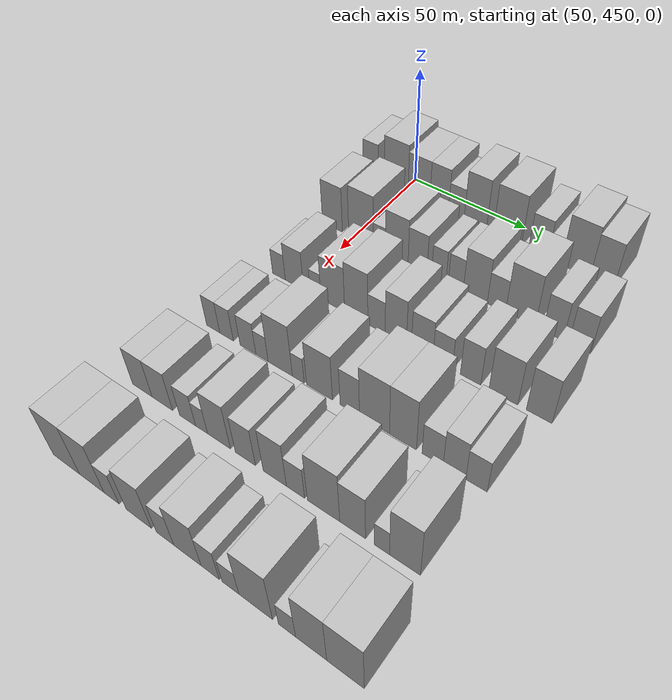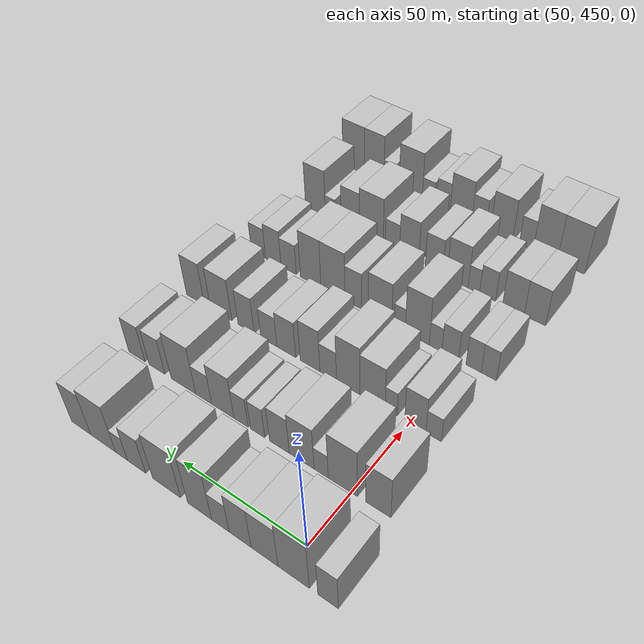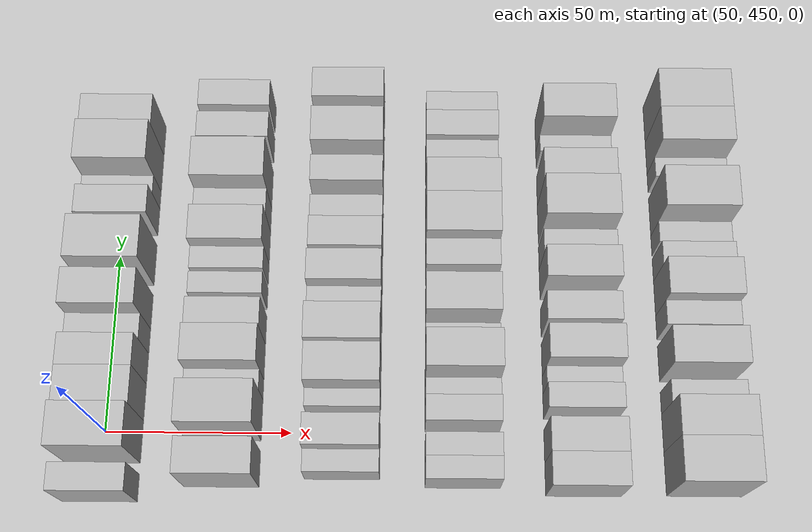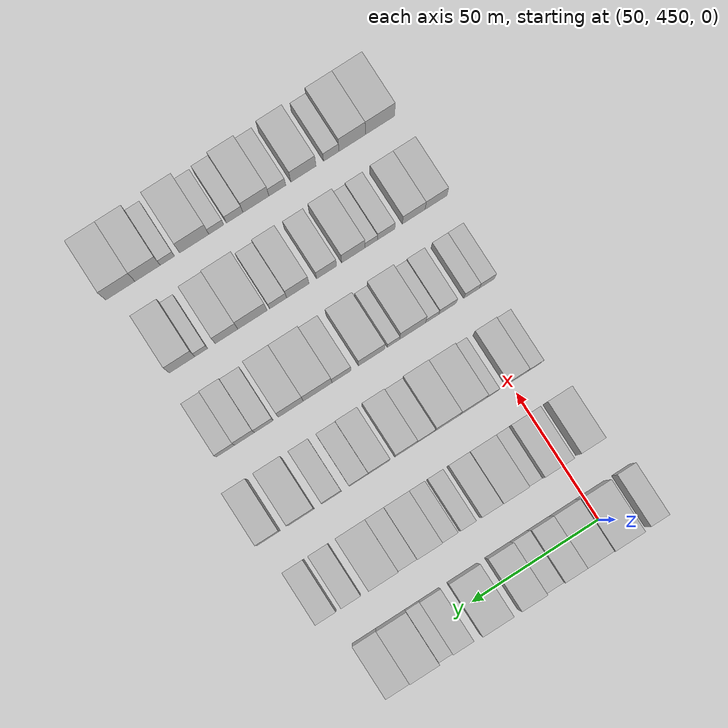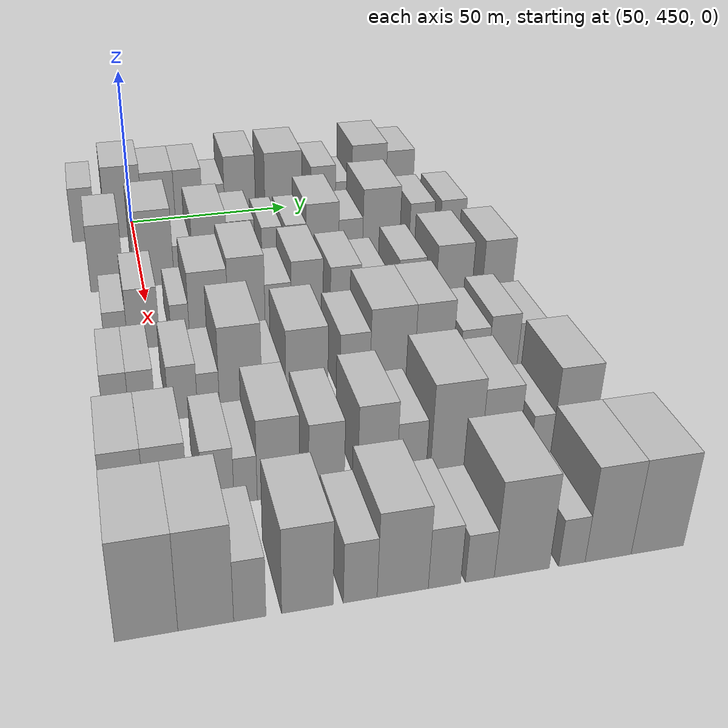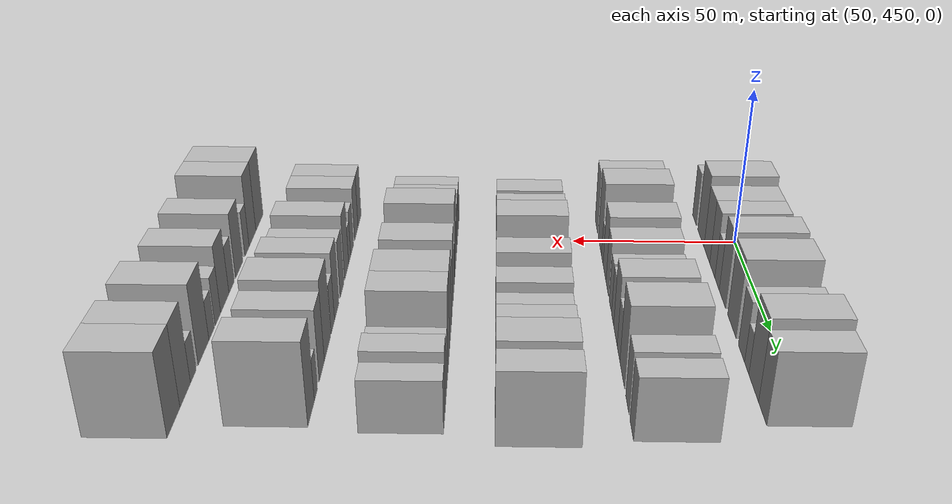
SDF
<sdf version="1.6">
 <world name="default">
  <model name="building_111">
   <static>1</static>
   <pose>50.0000 434.8874 0 0.000000 0.000000 0.000000</pose>
   <link name="link">
    <pose>0 0 9.00 0 0 0</pose>
    <collision name="collision"><geometry><box><size>20.0000 7.2635 18.0000</size></box></geometry></collision>
    <visual name="visual">
     <cast_shadows>0</cast_shadows>
     <geometry><box><size>20.0000 7.2635 18.0000</size></box></geometry>
     <material>
      <script>
       <uri>model://HANNAS_wall/materials/scripts</uri>
       <uri>model://HANNAS_wall/materials/textures</uri>
       <name>vrc/HANNAS_wall</name>
      </script>
     </material>
    </visual>
   </link>
  </model>
  <model name="building_112">
   <static>1</static>
   <pose>50.0000 447.2695 0 0.000000 0.000000 0.000000</pose>
   <link name="link">
    <pose>0 0 12.00 0 0 0</pose>
    <collision name="collision"><geometry><box><size>20.0000 11.5007 24.0000</size></box></geometry></collision>
    <visual name="visual">
     <cast_shadows>0</cast_shadows>
     <geometry><box><size>20.0000 11.5007 24.0000</size></box></geometry>
     <material>
      <script>
       <uri>model://HANNAS_wall/materials/scripts</uri>
       <uri>model://HANNAS_wall/materials/textures</uri>
       <name>vrc/HANNAS_wall</name>
      </script>
     </material>
    </visual>
   </link>
  </model>
  <model name="building_113">
   <static>1</static>
   <pose>50.0000 458.1062 0 0.000000 0.000000 0.000000</pose>
   <link name="link">
    <pose>0 0 10.50 0 0 0</pose>
    <collision name="collision"><geometry><box><size>20.0000 10.1726 21.0000</size></box></geometry></collision>
    <visual name="visual">
     <cast_shadows>0</cast_shadows>
     <geometry><box><size>20.0000 10.1726 21.0000</size></box></geometry>
     <material>
      <script>
       <uri>model://HANNAS_wall/materials/scripts</uri>
       <uri>model://HANNAS_wall/materials/textures</uri>
       <name>vrc/HANNAS_wall</name>
      </script>
     </material>
    </visual>
   </link>
  </model>
  <model name="building_114">
   <static>1</static>
   <pose>50.0000 467.4929 0 0.000000 0.000000 0.000000</pose>
   <link name="link">
    <pose>0 0 10.50 0 0 0</pose>
    <collision name="collision"><geometry><box><size>20.0000 8.6009 21.0000</size></box></geometry></collision>
    <visual name="visual">
     <cast_shadows>0</cast_shadows>
     <geometry><box><size>20.0000 8.6009 21.0000</size></box></geometry>
     <material>
      <script>
       <uri>model://HANNAS_wall/materials/scripts</uri>
       <uri>model://HANNAS_wall/materials/textures</uri>
       <name>vrc/HANNAS_wall</name>
      </script>
     </material>
    </visual>
   </link>
  </model>
  <model name="building_115">
   <static>1</static>
   <pose>50.0000 475.3122 0 0.000000 0.000000 0.000000</pose>
   <link name="link">
    <pose>0 0 7.50 0 0 0</pose>
    <collision name="collision"><geometry><box><size>20.0000 7.0378 15.0000</size></box></geometry></collision>
    <visual name="visual">
     <cast_shadows>0</cast_shadows>
     <geometry><box><size>20.0000 7.0378 15.0000</size></box></geometry>
     <material>
      <script>
       <uri>model://HANNAS_wall/materials/scripts</uri>
       <uri>model://HANNAS_wall/materials/textures</uri>
       <name>vrc/HANNAS_wall</name>
      </script>
     </material>
    </visual>
   </link>
  </model>
  <model name="building_116">
   <static>1</static>
   <pose>50.0000 483.7409 0 0.000000 0.000000 0.000000</pose>
   <link name="link">
    <pose>0 0 12.00 0 0 0</pose>
    <collision name="collision"><geometry><box><size>20.0000 9.8197 24.0000</size></box></geometry></collision>
    <visual name="visual">
     <cast_shadows>0</cast_shadows>
     <geometry><box><size>20.0000 9.8197 24.0000</size></box></geometry>
     <material>
      <script>
       <uri>model://HANNAS_wall/materials/scripts</uri>
       <uri>model://HANNAS_wall/materials/textures</uri>
       <name>vrc/HANNAS_wall</name>
      </script>
     </material>
    </visual>
   </link>
  </model>
  <model name="building_117">
   <static>1</static>
   <pose>50.0000 497.6180 0 0.000000 0.000000 0.000000</pose>
   <link name="link">
    <pose>0 0 12.00 0 0 0</pose>
    <collision name="collision"><geometry><box><size>20.0000 11.9344 24.0000</size></box></geometry></collision>
    <visual name="visual">
     <cast_shadows>0</cast_shadows>
     <geometry><box><size>20.0000 11.9344 24.0000</size></box></geometry>
     <material>
      <script>
       <uri>model://HANNAS_wall/materials/scripts</uri>
       <uri>model://HANNAS_wall/materials/textures</uri>
       <name>vrc/HANNAS_wall</name>
      </script>
     </material>
    </visual>
   </link>
  </model>
  <model name="building_118">
   <static>1</static>
   <pose>50.0000 510.6129 0 0.000000 0.000000 0.000000</pose>
   <link name="link">
    <pose>0 0 9.00 0 0 0</pose>
    <collision name="collision"><geometry><box><size>20.0000 8.0555 18.0000</size></box></geometry></collision>
    <visual name="visual">
     <cast_shadows>0</cast_shadows>
     <geometry><box><size>20.0000 8.0555 18.0000</size></box></geometry>
     <material>
      <script>
       <uri>model://HANNAS_wall/materials/scripts</uri>
       <uri>model://HANNAS_wall/materials/textures</uri>
       <name>vrc/HANNAS_wall</name>
      </script>
     </material>
    </visual>
   </link>
  </model>
  <model name="building_119">
   <static>1</static>
   <pose>50.0000 517.3009 0 0.000000 0.000000 0.000000</pose>
   <link name="link">
    <pose>0 0 6.00 0 0 0</pose>
    <collision name="collision"><geometry><box><size>20.0000 5.3206 12.0000</size></box></geometry></collision>
    <visual name="visual">
     <cast_shadows>0</cast_shadows>
     <geometry><box><size>20.0000 5.3206 12.0000</size></box></geometry>
     <material>
      <script>
       <uri>model://HANNAS_wall/materials/scripts</uri>
       <uri>model://HANNAS_wall/materials/textures</uri>
       <name>vrc/HANNAS_wall</name>
      </script>
     </material>
    </visual>
   </link>
  </model>
  <model name="building_120">
   <static>1</static>
   <pose>50.0000 525.6884 0 0.000000 0.000000 0.000000</pose>
   <link name="link">
    <pose>0 0 12.00 0 0 0</pose>
    <collision name="collision"><geometry><box><size>20.0000 11.4544 24.0000</size></box></geometry></collision>
    <visual name="visual">
     <cast_shadows>0</cast_shadows>
     <geometry><box><size>20.0000 11.4544 24.0000</size></box></geometry>
     <material>
      <script>
       <uri>model://HANNAS_wall/materials/scripts</uri>
       <uri>model://HANNAS_wall/materials/textures</uri>
       <name>vrc/HANNAS_wall</name>
      </script>
     </material>
    </visual>
   </link>
  </model>
  <model name="building_121">
   <static>1</static>
   <pose>50.0000 535.9910 0 0.000000 0.000000 0.000000</pose>
   <link name="link">
    <pose>0 0 10.50 0 0 0</pose>
    <collision name="collision"><geometry><box><size>20.0000 9.1508 21.0000</size></box></geometry></collision>
    <visual name="visual">
     <cast_shadows>0</cast_shadows>
     <geometry><box><size>20.0000 9.1508 21.0000</size></box></geometry>
     <material>
      <script>
       <uri>model://HANNAS_wall/materials/scripts</uri>
       <uri>model://HANNAS_wall/materials/textures</uri>
       <name>vrc/HANNAS_wall</name>
      </script>
     </material>
    </visual>
   </link>
  </model>
  <model name="building_232">
   <static>1</static>
   <pose>82.0000 440.0731 0 0.000000 0.000000 0.000000</pose>
   <link name="link">
    <pose>0 0 10.50 0 0 0</pose>
    <collision name="collision"><geometry><box><size>20.0000 9.4516 21.0000</size></box></geometry></collision>
    <visual name="visual">
     <cast_shadows>0</cast_shadows>
     <geometry><box><size>20.0000 9.4516 21.0000</size></box></geometry>
     <material>
      <script>
       <uri>model://HANNAS_wall/materials/scripts</uri>
       <uri>model://HANNAS_wall/materials/textures</uri>
       <name>vrc/HANNAS_wall</name>
      </script>
     </material>
    </visual>
   </link>
  </model>
  <model name="building_233">
   <static>1</static>
   <pose>82.0000 453.4378 0 0.000000 0.000000 0.000000</pose>
   <link name="link">
    <pose>0 0 12.00 0 0 0</pose>
    <collision name="collision"><geometry><box><size>20.0000 11.2779 24.0000</size></box></geometry></collision>
    <visual name="visual">
     <cast_shadows>0</cast_shadows>
     <geometry><box><size>20.0000 11.2779 24.0000</size></box></geometry>
     <material>
      <script>
       <uri>model://HANNAS_wall/materials/scripts</uri>
       <uri>model://HANNAS_wall/materials/textures</uri>
       <name>vrc/HANNAS_wall</name>
      </script>
     </material>
    </visual>
   </link>
  </model>
  <model name="building_234">
   <static>1</static>
   <pose>82.0000 461.8499 0 0.000000 0.000000 0.000000</pose>
   <link name="link">
    <pose>0 0 6.00 0 0 0</pose>
    <collision name="collision"><geometry><box><size>20.0000 5.5462 12.0000</size></box></geometry></collision>
    <visual name="visual">
     <cast_shadows>0</cast_shadows>
     <geometry><box><size>20.0000 5.5462 12.0000</size></box></geometry>
     <material>
      <script>
       <uri>model://HANNAS_wall/materials/scripts</uri>
       <uri>model://HANNAS_wall/materials/textures</uri>
       <name>vrc/HANNAS_wall</name>
      </script>
     </material>
    </visual>
   </link>
  </model>
  <model name="building_235">
   <static>1</static>
   <pose>82.0000 469.6278 0 0.000000 0.000000 0.000000</pose>
   <link name="link">
    <pose>0 0 10.50 0 0 0</pose>
    <collision name="collision"><geometry><box><size>20.0000 10.0094 21.0000</size></box></geometry></collision>
    <visual name="visual">
     <cast_shadows>0</cast_shadows>
     <geometry><box><size>20.0000 10.0094 21.0000</size></box></geometry>
     <material>
      <script>
       <uri>model://HANNAS_wall/materials/scripts</uri>
       <uri>model://HANNAS_wall/materials/textures</uri>
       <name>vrc/HANNAS_wall</name>
      </script>
     </material>
    </visual>
   </link>
  </model>
  <model name="building_236">
   <static>1</static>
   <pose>82.0000 478.7152 0 0.000000 0.000000 0.000000</pose>
   <link name="link">
    <pose>0 0 9.00 0 0 0</pose>
    <collision name="collision"><geometry><box><size>20.0000 8.1654 18.0000</size></box></geometry></collision>
    <visual name="visual">
     <cast_shadows>0</cast_shadows>
     <geometry><box><size>20.0000 8.1654 18.0000</size></box></geometry>
     <material>
      <script>
       <uri>model://HANNAS_wall/materials/scripts</uri>
       <uri>model://HANNAS_wall/materials/textures</uri>
       <name>vrc/HANNAS_wall</name>
      </script>
     </material>
    </visual>
   </link>
  </model>
  <model name="building_237">
   <static>1</static>
   <pose>82.0000 487.8254 0 0.000000 0.000000 0.000000</pose>
   <link name="link">
    <pose>0 0 7.50 0 0 0</pose>
    <collision name="collision"><geometry><box><size>20.0000 6.0551 15.0000</size></box></geometry></collision>
    <visual name="visual">
     <cast_shadows>0</cast_shadows>
     <geometry><box><size>20.0000 6.0551 15.0000</size></box></geometry>
     <material>
      <script>
       <uri>model://HANNAS_wall/materials/scripts</uri>
       <uri>model://HANNAS_wall/materials/textures</uri>
       <name>vrc/HANNAS_wall</name>
      </script>
     </material>
    </visual>
   </link>
  </model>
  <model name="building_238">
   <static>1</static>
   <pose>82.0000 494.9484 0 0.000000 0.000000 0.000000</pose>
   <link name="link">
    <pose>0 0 7.50 0 0 0</pose>
    <collision name="collision"><geometry><box><size>20.0000 6.1908 15.0000</size></box></geometry></collision>
    <visual name="visual">
     <cast_shadows>0</cast_shadows>
     <geometry><box><size>20.0000 6.1908 15.0000</size></box></geometry>
     <material>
      <script>
       <uri>model://HANNAS_wall/materials/scripts</uri>
       <uri>model://HANNAS_wall/materials/textures</uri>
       <name>vrc/HANNAS_wall</name>
      </script>
     </material>
    </visual>
   </link>
  </model>
  <model name="building_239">
   <static>1</static>
   <pose>82.0000 502.9239 0 0.000000 0.000000 0.000000</pose>
   <link name="link">
    <pose>0 0 10.50 0 0 0</pose>
    <collision name="collision"><geometry><box><size>20.0000 9.7602 21.0000</size></box></geometry></collision>
    <visual name="visual">
     <cast_shadows>0</cast_shadows>
     <geometry><box><size>20.0000 9.7602 21.0000</size></box></geometry>
     <material>
      <script>
       <uri>model://HANNAS_wall/materials/scripts</uri>
       <uri>model://HANNAS_wall/materials/textures</uri>
       <name>vrc/HANNAS_wall</name>
      </script>
     </material>
    </visual>
   </link>
  </model>
  <model name="building_240">
   <static>1</static>
   <pose>82.0000 511.4365 0 0.000000 0.000000 0.000000</pose>
   <link name="link">
    <pose>0 0 7.50 0 0 0</pose>
    <collision name="collision"><geometry><box><size>20.0000 7.2652 15.0000</size></box></geometry></collision>
    <visual name="visual">
     <cast_shadows>0</cast_shadows>
     <geometry><box><size>20.0000 7.2652 15.0000</size></box></geometry>
     <material>
      <script>
       <uri>model://HANNAS_wall/materials/scripts</uri>
       <uri>model://HANNAS_wall/materials/textures</uri>
       <name>vrc/HANNAS_wall</name>
      </script>
     </material>
    </visual>
   </link>
  </model>
  <model name="building_241">
   <static>1</static>
   <pose>82.0000 520.7633 0 0.000000 0.000000 0.000000</pose>
   <link name="link">
    <pose>0 0 12.00 0 0 0</pose>
    <collision name="collision"><geometry><box><size>20.0000 11.3882 24.0000</size></box></geometry></collision>
    <visual name="visual">
     <cast_shadows>0</cast_shadows>
     <geometry><box><size>20.0000 11.3882 24.0000</size></box></geometry>
     <material>
      <script>
       <uri>model://HANNAS_wall/materials/scripts</uri>
       <uri>model://HANNAS_wall/materials/textures</uri>
       <name>vrc/HANNAS_wall</name>
      </script>
     </material>
    </visual>
   </link>
  </model>
  <model name="building_242">
   <static>1</static>
   <pose>82.0000 533.2321 0 0.000000 0.000000 0.000000</pose>
   <link name="link">
    <pose>0 0 9.00 0 0 0</pose>
    <collision name="collision"><geometry><box><size>20.0000 7.5494 18.0000</size></box></geometry></collision>
    <visual name="visual">
     <cast_shadows>0</cast_shadows>
     <geometry><box><size>20.0000 7.5494 18.0000</size></box></geometry>
     <material>
      <script>
       <uri>model://HANNAS_wall/materials/scripts</uri>
       <uri>model://HANNAS_wall/materials/textures</uri>
       <name>vrc/HANNAS_wall</name>
      </script>
     </material>
    </visual>
   </link>
  </model>
  <model name="building_243">
   <static>1</static>
   <pose>82.0000 542.9568 0 0.000000 0.000000 0.000000</pose>
   <link name="link">
    <pose>0 0 9.00 0 0 0</pose>
    <collision name="collision"><geometry><box><size>20.0000 7.9002 18.0000</size></box></geometry></collision>
    <visual name="visual">
     <cast_shadows>0</cast_shadows>
     <geometry><box><size>20.0000 7.9002 18.0000</size></box></geometry>
     <material>
      <script>
       <uri>model://HANNAS_wall/materials/scripts</uri>
       <uri>model://HANNAS_wall/materials/textures</uri>
       <name>vrc/HANNAS_wall</name>
      </script>
     </material>
    </visual>
   </link>
  </model>
  <model name="building_352">
   <static>1</static>
   <pose>114.0000 440.5430 0 0.000000 0.000000 0.000000</pose>
   <link name="link">
    <pose>0 0 6.00 0 0 0</pose>
    <collision name="collision"><geometry><box><size>20.0000 5.9038 12.0000</size></box></geometry></collision>
    <visual name="visual">
     <cast_shadows>0</cast_shadows>
     <geometry><box><size>20.0000 5.9038 12.0000</size></box></geometry>
     <material>
      <script>
       <uri>model://HANNAS_wall/materials/scripts</uri>
       <uri>model://HANNAS_wall/materials/textures</uri>
       <name>vrc/HANNAS_wall</name>
      </script>
     </material>
    </visual>
   </link>
  </model>
  <model name="building_353">
   <static>1</static>
   <pose>114.0000 447.6449 0 0.000000 0.000000 0.000000</pose>
   <link name="link">
    <pose>0 0 9.00 0 0 0</pose>
    <collision name="collision"><geometry><box><size>20.0000 8.3000 18.0000</size></box></geometry></collision>
    <visual name="visual">
     <cast_shadows>0</cast_shadows>
     <geometry><box><size>20.0000 8.3000 18.0000</size></box></geometry>
     <material>
      <script>
       <uri>model://HANNAS_wall/materials/scripts</uri>
       <uri>model://HANNAS_wall/materials/textures</uri>
       <name>vrc/HANNAS_wall</name>
      </script>
     </material>
    </visual>
   </link>
  </model>
  <model name="building_354">
   <static>1</static>
   <pose>114.0000 457.2031 0 0.000000 0.000000 0.000000</pose>
   <link name="link">
    <pose>0 0 6.00 0 0 0</pose>
    <collision name="collision"><geometry><box><size>20.0000 4.8163 12.0000</size></box></geometry></collision>
    <visual name="visual">
     <cast_shadows>0</cast_shadows>
     <geometry><box><size>20.0000 4.8163 12.0000</size></box></geometry>
     <material>
      <script>
       <uri>model://HANNAS_wall/materials/scripts</uri>
       <uri>model://HANNAS_wall/materials/textures</uri>
       <name>vrc/HANNAS_wall</name>
      </script>
     </material>
    </visual>
   </link>
  </model>
  <model name="building_355">
   <static>1</static>
   <pose>114.0000 464.7822 0 0.000000 0.000000 0.000000</pose>
   <link name="link">
    <pose>0 0 10.50 0 0 0</pose>
    <collision name="collision"><geometry><box><size>20.0000 10.3421 21.0000</size></box></geometry></collision>
    <visual name="visual">
     <cast_shadows>0</cast_shadows>
     <geometry><box><size>20.0000 10.3421 21.0000</size></box></geometry>
     <material>
      <script>
       <uri>model://HANNAS_wall/materials/scripts</uri>
       <uri>model://HANNAS_wall/materials/textures</uri>
       <name>vrc/HANNAS_wall</name>
      </script>
     </material>
    </visual>
   </link>
  </model>
  <model name="building_356">
   <static>1</static>
   <pose>114.0000 474.8697 0 0.000000 0.000000 0.000000</pose>
   <link name="link">
    <pose>0 0 12.00 0 0 0</pose>
    <collision name="collision"><geometry><box><size>20.0000 9.8328 24.0000</size></box></geometry></collision>
    <visual name="visual">
     <cast_shadows>0</cast_shadows>
     <geometry><box><size>20.0000 9.8328 24.0000</size></box></geometry>
     <material>
      <script>
       <uri>model://HANNAS_wall/materials/scripts</uri>
       <uri>model://HANNAS_wall/materials/textures</uri>
       <name>vrc/HANNAS_wall</name>
      </script>
     </material>
    </visual>
   </link>
  </model>
  <model name="building_357">
   <static>1</static>
   <pose>114.0000 483.3516 0 0.000000 0.000000 0.000000</pose>
   <link name="link">
    <pose>0 0 7.50 0 0 0</pose>
    <collision name="collision"><geometry><box><size>20.0000 7.1312 15.0000</size></box></geometry></collision>
    <visual name="visual">
     <cast_shadows>0</cast_shadows>
     <geometry><box><size>20.0000 7.1312 15.0000</size></box></geometry>
     <material>
      <script>
       <uri>model://HANNAS_wall/materials/scripts</uri>
       <uri>model://HANNAS_wall/materials/textures</uri>
       <name>vrc/HANNAS_wall</name>
      </script>
     </material>
    </visual>
   </link>
  </model>
  <model name="building_358">
   <static>1</static>
   <pose>114.0000 491.2294 0 0.000000 0.000000 0.000000</pose>
   <link name="link">
    <pose>0 0 10.50 0 0 0</pose>
    <collision name="collision"><geometry><box><size>20.0000 8.6244 21.0000</size></box></geometry></collision>
    <visual name="visual">
     <cast_shadows>0</cast_shadows>
     <geometry><box><size>20.0000 8.6244 21.0000</size></box></geometry>
     <material>
      <script>
       <uri>model://HANNAS_wall/materials/scripts</uri>
       <uri>model://HANNAS_wall/materials/textures</uri>
       <name>vrc/HANNAS_wall</name>
      </script>
     </material>
    </visual>
   </link>
  </model>
  <model name="building_359">
   <static>1</static>
   <pose>114.0000 501.7713 0 0.000000 0.000000 0.000000</pose>
   <link name="link">
    <pose>0 0 9.00 0 0 0</pose>
    <collision name="collision"><geometry><box><size>20.0000 8.4593 18.0000</size></box></geometry></collision>
    <visual name="visual">
     <cast_shadows>0</cast_shadows>
     <geometry><box><size>20.0000 8.4593 18.0000</size></box></geometry>
     <material>
      <script>
       <uri>model://HANNAS_wall/materials/scripts</uri>
       <uri>model://HANNAS_wall/materials/textures</uri>
       <name>vrc/HANNAS_wall</name>
      </script>
     </material>
    </visual>
   </link>
  </model>
  <model name="building_360">
   <static>1</static>
   <pose>114.0000 509.7356 0 0.000000 0.000000 0.000000</pose>
   <link name="link">
    <pose>0 0 7.50 0 0 0</pose>
    <collision name="collision"><geometry><box><size>20.0000 7.4693 15.0000</size></box></geometry></collision>
    <visual name="visual">
     <cast_shadows>0</cast_shadows>
     <geometry><box><size>20.0000 7.4693 15.0000</size></box></geometry>
     <material>
      <script>
       <uri>model://HANNAS_wall/materials/scripts</uri>
       <uri>model://HANNAS_wall/materials/textures</uri>
       <name>vrc/HANNAS_wall</name>
      </script>
     </material>
    </visual>
   </link>
  </model>
  <model name="building_361">
   <static>1</static>
   <pose>114.0000 520.2838 0 0.000000 0.000000 0.000000</pose>
   <link name="link">
    <pose>0 0 9.00 0 0 0</pose>
    <collision name="collision"><geometry><box><size>20.0000 7.6270 18.0000</size></box></geometry></collision>
    <visual name="visual">
     <cast_shadows>0</cast_shadows>
     <geometry><box><size>20.0000 7.6270 18.0000</size></box></geometry>
     <material>
      <script>
       <uri>model://HANNAS_wall/materials/scripts</uri>
       <uri>model://HANNAS_wall/materials/textures</uri>
       <name>vrc/HANNAS_wall</name>
      </script>
     </material>
    </visual>
   </link>
  </model>
  <model name="building_362">
   <static>1</static>
   <pose>114.0000 532.2781 0 0.000000 0.000000 0.000000</pose>
   <link name="link">
    <pose>0 0 10.50 0 0 0</pose>
    <collision name="collision"><geometry><box><size>20.0000 10.3618 21.0000</size></box></geometry></collision>
    <visual name="visual">
     <cast_shadows>0</cast_shadows>
     <geometry><box><size>20.0000 10.3618 21.0000</size></box></geometry>
     <material>
      <script>
       <uri>model://HANNAS_wall/materials/scripts</uri>
       <uri>model://HANNAS_wall/materials/textures</uri>
       <name>vrc/HANNAS_wall</name>
      </script>
     </material>
    </visual>
   </link>
  </model>
  <model name="building_363">
   <static>1</static>
   <pose>114.0000 544.9211 0 0.000000 0.000000 0.000000</pose>
   <link name="link">
    <pose>0 0 10.50 0 0 0</pose>
    <collision name="collision"><geometry><box><size>20.0000 8.9242 21.0000</size></box></geometry></collision>
    <visual name="visual">
     <cast_shadows>0</cast_shadows>
     <geometry><box><size>20.0000 8.9242 21.0000</size></box></geometry>
     <material>
      <script>
       <uri>model://HANNAS_wall/materials/scripts</uri>
       <uri>model://HANNAS_wall/materials/textures</uri>
       <name>vrc/HANNAS_wall</name>
      </script>
     </material>
    </visual>
   </link>
  </model>
  <model name="building_471">
   <static>1</static>
   <pose>146.0000 438.5244 0 0.000000 0.000000 0.000000</pose>
   <link name="link">
    <pose>0 0 7.50 0 0 0</pose>
    <collision name="collision"><geometry><box><size>20.0000 6.0046 15.0000</size></box></geometry></collision>
    <visual name="visual">
     <cast_shadows>0</cast_shadows>
     <geometry><box><size>20.0000 6.0046 15.0000</size></box></geometry>
     <material>
      <script>
       <uri>model://HANNAS_wall/materials/scripts</uri>
       <uri>model://HANNAS_wall/materials/textures</uri>
       <name>vrc/HANNAS_wall</name>
      </script>
     </material>
    </visual>
   </link>
  </model>
  <model name="building_472">
   <static>1</static>
   <pose>146.0000 444.5858 0 0.000000 0.000000 0.000000</pose>
   <link name="link">
    <pose>0 0 7.50 0 0 0</pose>
    <collision name="collision"><geometry><box><size>20.0000 6.1182 15.0000</size></box></geometry></collision>
    <visual name="visual">
     <cast_shadows>0</cast_shadows>
     <geometry><box><size>20.0000 6.1182 15.0000</size></box></geometry>
     <material>
      <script>
       <uri>model://HANNAS_wall/materials/scripts</uri>
       <uri>model://HANNAS_wall/materials/textures</uri>
       <name>vrc/HANNAS_wall</name>
      </script>
     </material>
    </visual>
   </link>
  </model>
  <model name="building_473">
   <static>1</static>
   <pose>146.0000 454.0901 0 0.000000 0.000000 0.000000</pose>
   <link name="link">
    <pose>0 0 7.50 0 0 0</pose>
    <collision name="collision"><geometry><box><size>20.0000 6.8904 15.0000</size></box></geometry></collision>
    <visual name="visual">
     <cast_shadows>0</cast_shadows>
     <geometry><box><size>20.0000 6.8904 15.0000</size></box></geometry>
     <material>
      <script>
       <uri>model://HANNAS_wall/materials/scripts</uri>
       <uri>model://HANNAS_wall/materials/textures</uri>
       <name>vrc/HANNAS_wall</name>
      </script>
     </material>
    </visual>
   </link>
  </model>
  <model name="building_474">
   <static>1</static>
   <pose>146.0000 460.1726 0 0.000000 0.000000 0.000000</pose>
   <link name="link">
    <pose>0 0 6.00 0 0 0</pose>
    <collision name="collision"><geometry><box><size>20.0000 5.2745 12.0000</size></box></geometry></collision>
    <visual name="visual">
     <cast_shadows>0</cast_shadows>
     <geometry><box><size>20.0000 5.2745 12.0000</size></box></geometry>
     <material>
      <script>
       <uri>model://HANNAS_wall/materials/scripts</uri>
       <uri>model://HANNAS_wall/materials/textures</uri>
       <name>vrc/HANNAS_wall</name>
      </script>
     </material>
    </visual>
   </link>
  </model>
  <model name="building_475">
   <static>1</static>
   <pose>146.0000 467.9206 0 0.000000 0.000000 0.000000</pose>
   <link name="link">
    <pose>0 0 12.00 0 0 0</pose>
    <collision name="collision"><geometry><box><size>20.0000 10.2216 24.0000</size></box></geometry></collision>
    <visual name="visual">
     <cast_shadows>0</cast_shadows>
     <geometry><box><size>20.0000 10.2216 24.0000</size></box></geometry>
     <material>
      <script>
       <uri>model://HANNAS_wall/materials/scripts</uri>
       <uri>model://HANNAS_wall/materials/textures</uri>
       <name>vrc/HANNAS_wall</name>
      </script>
     </material>
    </visual>
   </link>
  </model>
  <model name="building_476">
   <static>1</static>
   <pose>146.0000 475.4468 0 0.000000 0.000000 0.000000</pose>
   <link name="link">
    <pose>0 0 6.00 0 0 0</pose>
    <collision name="collision"><geometry><box><size>20.0000 4.8308 12.0000</size></box></geometry></collision>
    <visual name="visual">
     <cast_shadows>0</cast_shadows>
     <geometry><box><size>20.0000 4.8308 12.0000</size></box></geometry>
     <material>
      <script>
       <uri>model://HANNAS_wall/materials/scripts</uri>
       <uri>model://HANNAS_wall/materials/textures</uri>
       <name>vrc/HANNAS_wall</name>
      </script>
     </material>
    </visual>
   </link>
  </model>
  <model name="building_477">
   <static>1</static>
   <pose>146.0000 484.0510 0 0.000000 0.000000 0.000000</pose>
   <link name="link">
    <pose>0 0 10.50 0 0 0</pose>
    <collision name="collision"><geometry><box><size>20.0000 10.3776 21.0000</size></box></geometry></collision>
    <visual name="visual">
     <cast_shadows>0</cast_shadows>
     <geometry><box><size>20.0000 10.3776 21.0000</size></box></geometry>
     <material>
      <script>
       <uri>model://HANNAS_wall/materials/scripts</uri>
       <uri>model://HANNAS_wall/materials/textures</uri>
       <name>vrc/HANNAS_wall</name>
      </script>
     </material>
    </visual>
   </link>
  </model>
  <model name="building_478">
   <static>1</static>
   <pose>146.0000 495.9777 0 0.000000 0.000000 0.000000</pose>
   <link name="link">
    <pose>0 0 9.00 0 0 0</pose>
    <collision name="collision"><geometry><box><size>20.0000 7.4760 18.0000</size></box></geometry></collision>
    <visual name="visual">
     <cast_shadows>0</cast_shadows>
     <geometry><box><size>20.0000 7.4760 18.0000</size></box></geometry>
     <material>
      <script>
       <uri>model://HANNAS_wall/materials/scripts</uri>
       <uri>model://HANNAS_wall/materials/textures</uri>
       <name>vrc/HANNAS_wall</name>
      </script>
     </material>
    </visual>
   </link>
  </model>
  <model name="building_479">
   <static>1</static>
   <pose>146.0000 505.3576 0 0.000000 0.000000 0.000000</pose>
   <link name="link">
    <pose>0 0 12.00 0 0 0</pose>
    <collision name="collision"><geometry><box><size>20.0000 11.2837 24.0000</size></box></geometry></collision>
    <visual name="visual">
     <cast_shadows>0</cast_shadows>
     <geometry><box><size>20.0000 11.2837 24.0000</size></box></geometry>
     <material>
      <script>
       <uri>model://HANNAS_wall/materials/scripts</uri>
       <uri>model://HANNAS_wall/materials/textures</uri>
       <name>vrc/HANNAS_wall</name>
      </script>
     </material>
    </visual>
   </link>
  </model>
  <model name="building_480">
   <static>1</static>
   <pose>146.0000 515.8906 0 0.000000 0.000000 0.000000</pose>
   <link name="link">
    <pose>0 0 12.00 0 0 0</pose>
    <collision name="collision"><geometry><box><size>20.0000 9.7823 24.0000</size></box></geometry></collision>
    <visual name="visual">
     <cast_shadows>0</cast_shadows>
     <geometry><box><size>20.0000 9.7823 24.0000</size></box></geometry>
     <material>
      <script>
       <uri>model://HANNAS_wall/materials/scripts</uri>
       <uri>model://HANNAS_wall/materials/textures</uri>
       <name>vrc/HANNAS_wall</name>
      </script>
     </material>
    </visual>
   </link>
  </model>
  <model name="building_481">
   <static>1</static>
   <pose>146.0000 526.5034 0 0.000000 0.000000 0.000000</pose>
   <link name="link">
    <pose>0 0 7.50 0 0 0</pose>
    <collision name="collision"><geometry><box><size>20.0000 7.4433 15.0000</size></box></geometry></collision>
    <visual name="visual">
     <cast_shadows>0</cast_shadows>
     <geometry><box><size>20.0000 7.4433 15.0000</size></box></geometry>
     <material>
      <script>
       <uri>model://HANNAS_wall/materials/scripts</uri>
       <uri>model://HANNAS_wall/materials/textures</uri>
       <name>vrc/HANNAS_wall</name>
      </script>
     </material>
    </visual>
   </link>
  </model>
  <model name="building_482">
   <static>1</static>
   <pose>146.0000 534.0866 0 0.000000 0.000000 0.000000</pose>
   <link name="link">
    <pose>0 0 9.00 0 0 0</pose>
    <collision name="collision"><geometry><box><size>20.0000 7.7231 18.0000</size></box></geometry></collision>
    <visual name="visual">
     <cast_shadows>0</cast_shadows>
     <geometry><box><size>20.0000 7.7231 18.0000</size></box></geometry>
     <material>
      <script>
       <uri>model://HANNAS_wall/materials/scripts</uri>
       <uri>model://HANNAS_wall/materials/textures</uri>
       <name>vrc/HANNAS_wall</name>
      </script>
     </material>
    </visual>
   </link>
  </model>
  <model name="building_483">
   <static>1</static>
   <pose>146.0000 541.5458 0 0.000000 0.000000 0.000000</pose>
   <link name="link">
    <pose>0 0 7.50 0 0 0</pose>
    <collision name="collision"><geometry><box><size>20.0000 7.1952 15.0000</size></box></geometry></collision>
    <visual name="visual">
     <cast_shadows>0</cast_shadows>
     <geometry><box><size>20.0000 7.1952 15.0000</size></box></geometry>
     <material>
      <script>
       <uri>model://HANNAS_wall/materials/scripts</uri>
       <uri>model://HANNAS_wall/materials/textures</uri>
       <name>vrc/HANNAS_wall</name>
      </script>
     </material>
    </visual>
   </link>
  </model>
  <model name="building_585">
   <static>1</static>
   <pose>178.0000 437.9545 0 0.000000 0.000000 0.000000</pose>
   <link name="link">
    <pose>0 0 9.00 0 0 0</pose>
    <collision name="collision"><geometry><box><size>20.0000 8.7198 18.0000</size></box></geometry></collision>
    <visual name="visual">
     <cast_shadows>0</cast_shadows>
     <geometry><box><size>20.0000 8.7198 18.0000</size></box></geometry>
     <material>
      <script>
       <uri>model://HANNAS_wall/materials/scripts</uri>
       <uri>model://HANNAS_wall/materials/textures</uri>
       <name>vrc/HANNAS_wall</name>
      </script>
     </material>
    </visual>
   </link>
  </model>
  <model name="building_586">
   <static>1</static>
   <pose>178.0000 446.8100 0 0.000000 0.000000 0.000000</pose>
   <link name="link">
    <pose>0 0 9.00 0 0 0</pose>
    <collision name="collision"><geometry><box><size>20.0000 8.9911 18.0000</size></box></geometry></collision>
    <visual name="visual">
     <cast_shadows>0</cast_shadows>
     <geometry><box><size>20.0000 8.9911 18.0000</size></box></geometry>
     <material>
      <script>
       <uri>model://HANNAS_wall/materials/scripts</uri>
       <uri>model://HANNAS_wall/materials/textures</uri>
       <name>vrc/HANNAS_wall</name>
      </script>
     </material>
    </visual>
   </link>
  </model>
  <model name="building_587">
   <static>1</static>
   <pose>178.0000 457.7062 0 0.000000 0.000000 0.000000</pose>
   <link name="link">
    <pose>0 0 7.50 0 0 0</pose>
    <collision name="collision"><geometry><box><size>20.0000 6.8013 15.0000</size></box></geometry></collision>
    <visual name="visual">
     <cast_shadows>0</cast_shadows>
     <geometry><box><size>20.0000 6.8013 15.0000</size></box></geometry>
     <material>
      <script>
       <uri>model://HANNAS_wall/materials/scripts</uri>
       <uri>model://HANNAS_wall/materials/textures</uri>
       <name>vrc/HANNAS_wall</name>
      </script>
     </material>
    </visual>
   </link>
  </model>
  <model name="building_588">
   <static>1</static>
   <pose>178.0000 463.6082 0 0.000000 0.000000 0.000000</pose>
   <link name="link">
    <pose>0 0 6.00 0 0 0</pose>
    <collision name="collision"><geometry><box><size>20.0000 5.0028 12.0000</size></box></geometry></collision>
    <visual name="visual">
     <cast_shadows>0</cast_shadows>
     <geometry><box><size>20.0000 5.0028 12.0000</size></box></geometry>
     <material>
      <script>
       <uri>model://HANNAS_wall/materials/scripts</uri>
       <uri>model://HANNAS_wall/materials/textures</uri>
       <name>vrc/HANNAS_wall</name>
      </script>
     </material>
    </visual>
   </link>
  </model>
  <model name="building_589">
   <static>1</static>
   <pose>178.0000 470.7381 0 0.000000 0.000000 0.000000</pose>
   <link name="link">
    <pose>0 0 10.50 0 0 0</pose>
    <collision name="collision"><geometry><box><size>20.0000 9.2569 21.0000</size></box></geometry></collision>
    <visual name="visual">
     <cast_shadows>0</cast_shadows>
     <geometry><box><size>20.0000 9.2569 21.0000</size></box></geometry>
     <material>
      <script>
       <uri>model://HANNAS_wall/materials/scripts</uri>
       <uri>model://HANNAS_wall/materials/textures</uri>
       <name>vrc/HANNAS_wall</name>
      </script>
     </material>
    </visual>
   </link>
  </model>
  <model name="building_590">
   <static>1</static>
   <pose>178.0000 481.3088 0 0.000000 0.000000 0.000000</pose>
   <link name="link">
    <pose>0 0 9.00 0 0 0</pose>
    <collision name="collision"><geometry><box><size>20.0000 7.8844 18.0000</size></box></geometry></collision>
    <visual name="visual">
     <cast_shadows>0</cast_shadows>
     <geometry><box><size>20.0000 7.8844 18.0000</size></box></geometry>
     <material>
      <script>
       <uri>model://HANNAS_wall/materials/scripts</uri>
       <uri>model://HANNAS_wall/materials/textures</uri>
       <name>vrc/HANNAS_wall</name>
      </script>
     </material>
    </visual>
   </link>
  </model>
  <model name="building_591">
   <static>1</static>
   <pose>178.0000 492.6667 0 0.000000 0.000000 0.000000</pose>
   <link name="link">
    <pose>0 0 10.50 0 0 0</pose>
    <collision name="collision"><geometry><box><size>20.0000 8.8314 21.0000</size></box></geometry></collision>
    <visual name="visual">
     <cast_shadows>0</cast_shadows>
     <geometry><box><size>20.0000 8.8314 21.0000</size></box></geometry>
     <material>
      <script>
       <uri>model://HANNAS_wall/materials/scripts</uri>
       <uri>model://HANNAS_wall/materials/textures</uri>
       <name>vrc/HANNAS_wall</name>
      </script>
     </material>
    </visual>
   </link>
  </model>
  <model name="building_592">
   <static>1</static>
   <pose>178.0000 500.4384 0 0.000000 0.000000 0.000000</pose>
   <link name="link">
    <pose>0 0 7.50 0 0 0</pose>
    <collision name="collision"><geometry><box><size>20.0000 6.7120 15.0000</size></box></geometry></collision>
    <visual name="visual">
     <cast_shadows>0</cast_shadows>
     <geometry><box><size>20.0000 6.7120 15.0000</size></box></geometry>
     <material>
      <script>
       <uri>model://HANNAS_wall/materials/scripts</uri>
       <uri>model://HANNAS_wall/materials/textures</uri>
       <name>vrc/HANNAS_wall</name>
      </script>
     </material>
    </visual>
   </link>
  </model>
  <model name="building_593">
   <static>1</static>
   <pose>178.0000 510.5734 0 0.000000 0.000000 0.000000</pose>
   <link name="link">
    <pose>0 0 12.00 0 0 0</pose>
    <collision name="collision"><geometry><box><size>20.0000 11.5581 24.0000</size></box></geometry></collision>
    <visual name="visual">
     <cast_shadows>0</cast_shadows>
     <geometry><box><size>20.0000 11.5581 24.0000</size></box></geometry>
     <material>
      <script>
       <uri>model://HANNAS_wall/materials/scripts</uri>
       <uri>model://HANNAS_wall/materials/textures</uri>
       <name>vrc/HANNAS_wall</name>
      </script>
     </material>
    </visual>
   </link>
  </model>
  <model name="building_594">
   <static>1</static>
   <pose>178.0000 520.8046 0 0.000000 0.000000 0.000000</pose>
   <link name="link">
    <pose>0 0 10.50 0 0 0</pose>
    <collision name="collision"><geometry><box><size>20.0000 8.9043 21.0000</size></box></geometry></collision>
    <visual name="visual">
     <cast_shadows>0</cast_shadows>
     <geometry><box><size>20.0000 8.9043 21.0000</size></box></geometry>
     <material>
      <script>
       <uri>model://HANNAS_wall/materials/scripts</uri>
       <uri>model://HANNAS_wall/materials/textures</uri>
       <name>vrc/HANNAS_wall</name>
      </script>
     </material>
    </visual>
   </link>
  </model>
  <model name="building_595">
   <static>1</static>
   <pose>178.0000 530.7548 0 0.000000 0.000000 0.000000</pose>
   <link name="link">
    <pose>0 0 6.00 0 0 0</pose>
    <collision name="collision"><geometry><box><size>20.0000 4.9959 12.0000</size></box></geometry></collision>
    <visual name="visual">
     <cast_shadows>0</cast_shadows>
     <geometry><box><size>20.0000 4.9959 12.0000</size></box></geometry>
     <material>
      <script>
       <uri>model://HANNAS_wall/materials/scripts</uri>
       <uri>model://HANNAS_wall/materials/textures</uri>
       <name>vrc/HANNAS_wall</name>
      </script>
     </material>
    </visual>
   </link>
  </model>
  <model name="building_596">
   <static>1</static>
   <pose>178.0000 538.2867 0 0.000000 0.000000 0.000000</pose>
   <link name="link">
    <pose>0 0 12.00 0 0 0</pose>
    <collision name="collision"><geometry><box><size>20.0000 10.0679 24.0000</size></box></geometry></collision>
    <visual name="visual">
     <cast_shadows>0</cast_shadows>
     <geometry><box><size>20.0000 10.0679 24.0000</size></box></geometry>
     <material>
      <script>
       <uri>model://HANNAS_wall/materials/scripts</uri>
       <uri>model://HANNAS_wall/materials/textures</uri>
       <name>vrc/HANNAS_wall</name>
      </script>
     </material>
    </visual>
   </link>
  </model>
  <model name="building_705">
   <static>1</static>
   <pose>210.0000 439.6480 0 0.000000 0.000000 0.000000</pose>
   <link name="link">
    <pose>0 0 12.00 0 0 0</pose>
    <collision name="collision"><geometry><box><size>20.0000 11.6182 24.0000</size></box></geometry></collision>
    <visual name="visual">
     <cast_shadows>0</cast_shadows>
     <geometry><box><size>20.0000 11.6182 24.0000</size></box></geometry>
     <material>
      <script>
       <uri>model://HANNAS_wall/materials/scripts</uri>
       <uri>model://HANNAS_wall/materials/textures</uri>
       <name>vrc/HANNAS_wall</name>
      </script>
     </material>
    </visual>
   </link>
  </model>
  <model name="building_706">
   <static>1</static>
   <pose>210.0000 450.6703 0 0.000000 0.000000 0.000000</pose>
   <link name="link">
    <pose>0 0 12.00 0 0 0</pose>
    <collision name="collision"><geometry><box><size>20.0000 10.4265 24.0000</size></box></geometry></collision>
    <visual name="visual">
     <cast_shadows>0</cast_shadows>
     <geometry><box><size>20.0000 10.4265 24.0000</size></box></geometry>
     <material>
      <script>
       <uri>model://HANNAS_wall/materials/scripts</uri>
       <uri>model://HANNAS_wall/materials/textures</uri>
       <name>vrc/HANNAS_wall</name>
      </script>
     </material>
    </visual>
   </link>
  </model>
  <model name="building_707">
   <static>1</static>
   <pose>210.0000 458.9427 0 0.000000 0.000000 0.000000</pose>
   <link name="link">
    <pose>0 0 7.50 0 0 0</pose>
    <collision name="collision"><geometry><box><size>20.0000 6.1182 15.0000</size></box></geometry></collision>
    <visual name="visual">
     <cast_shadows>0</cast_shadows>
     <geometry><box><size>20.0000 6.1182 15.0000</size></box></geometry>
     <material>
      <script>
       <uri>model://HANNAS_wall/materials/scripts</uri>
       <uri>model://HANNAS_wall/materials/textures</uri>
       <name>vrc/HANNAS_wall</name>
      </script>
     </material>
    </visual>
   </link>
  </model>
  <model name="building_708">
   <static>1</static>
   <pose>210.0000 469.9872 0 0.000000 0.000000 0.000000</pose>
   <link name="link">
    <pose>0 0 10.50 0 0 0</pose>
    <collision name="collision"><geometry><box><size>20.0000 9.9710 21.0000</size></box></geometry></collision>
    <visual name="visual">
     <cast_shadows>0</cast_shadows>
     <geometry><box><size>20.0000 9.9710 21.0000</size></box></geometry>
     <material>
      <script>
       <uri>model://HANNAS_wall/materials/scripts</uri>
       <uri>model://HANNAS_wall/materials/textures</uri>
       <name>vrc/HANNAS_wall</name>
      </script>
     </material>
    </visual>
   </link>
  </model>
  <model name="building_709">
   <static>1</static>
   <pose>210.0000 480.3166 0 0.000000 0.000000 0.000000</pose>
   <link name="link">
    <pose>0 0 7.50 0 0 0</pose>
    <collision name="collision"><geometry><box><size>20.0000 6.6878 15.0000</size></box></geometry></collision>
    <visual name="visual">
     <cast_shadows>0</cast_shadows>
     <geometry><box><size>20.0000 6.6878 15.0000</size></box></geometry>
     <material>
      <script>
       <uri>model://HANNAS_wall/materials/scripts</uri>
       <uri>model://HANNAS_wall/materials/textures</uri>
       <name>vrc/HANNAS_wall</name>
      </script>
     </material>
    </visual>
   </link>
  </model>
  <model name="building_710">
   <static>1</static>
   <pose>210.0000 488.7854 0 0.000000 0.000000 0.000000</pose>
   <link name="link">
    <pose>0 0 10.50 0 0 0</pose>
    <collision name="collision"><geometry><box><size>20.0000 10.2498 21.0000</size></box></geometry></collision>
    <visual name="visual">
     <cast_shadows>0</cast_shadows>
     <geometry><box><size>20.0000 10.2498 21.0000</size></box></geometry>
     <material>
      <script>
       <uri>model://HANNAS_wall/materials/scripts</uri>
       <uri>model://HANNAS_wall/materials/textures</uri>
       <name>vrc/HANNAS_wall</name>
      </script>
     </material>
    </visual>
   </link>
  </model>
  <model name="building_711">
   <static>1</static>
   <pose>210.0000 497.1997 0 0.000000 0.000000 0.000000</pose>
   <link name="link">
    <pose>0 0 7.50 0 0 0</pose>
    <collision name="collision"><geometry><box><size>20.0000 6.5788 15.0000</size></box></geometry></collision>
    <visual name="visual">
     <cast_shadows>0</cast_shadows>
     <geometry><box><size>20.0000 6.5788 15.0000</size></box></geometry>
     <material>
      <script>
       <uri>model://HANNAS_wall/materials/scripts</uri>
       <uri>model://HANNAS_wall/materials/textures</uri>
       <name>vrc/HANNAS_wall</name>
      </script>
     </material>
    </visual>
   </link>
  </model>
  <model name="building_712">
   <static>1</static>
   <pose>210.0000 504.4660 0 0.000000 0.000000 0.000000</pose>
   <link name="link">
    <pose>0 0 6.00 0 0 0</pose>
    <collision name="collision"><geometry><box><size>20.0000 5.9538 12.0000</size></box></geometry></collision>
    <visual name="visual">
     <cast_shadows>0</cast_shadows>
     <geometry><box><size>20.0000 5.9538 12.0000</size></box></geometry>
     <material>
      <script>
       <uri>model://HANNAS_wall/materials/scripts</uri>
       <uri>model://HANNAS_wall/materials/textures</uri>
       <name>vrc/HANNAS_wall</name>
      </script>
     </material>
    </visual>
   </link>
  </model>
  <model name="building_713">
   <static>1</static>
   <pose>210.0000 513.1985 0 0.000000 0.000000 0.000000</pose>
   <link name="link">
    <pose>0 0 12.00 0 0 0</pose>
    <collision name="collision"><geometry><box><size>20.0000 11.5112 24.0000</size></box></geometry></collision>
    <visual name="visual">
     <cast_shadows>0</cast_shadows>
     <geometry><box><size>20.0000 11.5112 24.0000</size></box></geometry>
     <material>
      <script>
       <uri>model://HANNAS_wall/materials/scripts</uri>
       <uri>model://HANNAS_wall/materials/textures</uri>
       <name>vrc/HANNAS_wall</name>
      </script>
     </material>
    </visual>
   </link>
  </model>
  <model name="building_714">
   <static>1</static>
   <pose>210.0000 523.7769 0 0.000000 0.000000 0.000000</pose>
   <link name="link">
    <pose>0 0 6.00 0 0 0</pose>
    <collision name="collision"><geometry><box><size>20.0000 5.6456 12.0000</size></box></geometry></collision>
    <visual name="visual">
     <cast_shadows>0</cast_shadows>
     <geometry><box><size>20.0000 5.6456 12.0000</size></box></geometry>
     <material>
      <script>
       <uri>model://HANNAS_wall/materials/scripts</uri>
       <uri>model://HANNAS_wall/materials/textures</uri>
       <name>vrc/HANNAS_wall</name>
      </script>
     </material>
    </visual>
   </link>
  </model>
  <model name="building_715">
   <static>1</static>
   <pose>210.0000 531.5839 0 0.000000 0.000000 0.000000</pose>
   <link name="link">
    <pose>0 0 12.00 0 0 0</pose>
    <collision name="collision"><geometry><box><size>20.0000 9.9684 24.0000</size></box></geometry></collision>
    <visual name="visual">
     <cast_shadows>0</cast_shadows>
     <geometry><box><size>20.0000 9.9684 24.0000</size></box></geometry>
     <material>
      <script>
       <uri>model://HANNAS_wall/materials/scripts</uri>
       <uri>model://HANNAS_wall/materials/textures</uri>
       <name>vrc/HANNAS_wall</name>
      </script>
     </material>
    </visual>
   </link>
  </model>
  <model name="building_716">
   <static>1</static>
   <pose>210.0000 542.3346 0 0.000000 0.000000 0.000000</pose>
   <link name="link">
    <pose>0 0 12.00 0 0 0</pose>
    <collision name="collision"><geometry><box><size>20.0000 11.5330 24.0000</size></box></geometry></collision>
    <visual name="visual">
     <cast_shadows>0</cast_shadows>
     <geometry><box><size>20.0000 11.5330 24.0000</size></box></geometry>
     <material>
      <script>
       <uri>model://HANNAS_wall/materials/scripts</uri>
       <uri>model://HANNAS_wall/materials/textures</uri>
       <name>vrc/HANNAS_wall</name>
      </script>
     </material>
    </visual>
   </link>
  </model>
 </world>
</sdf>
